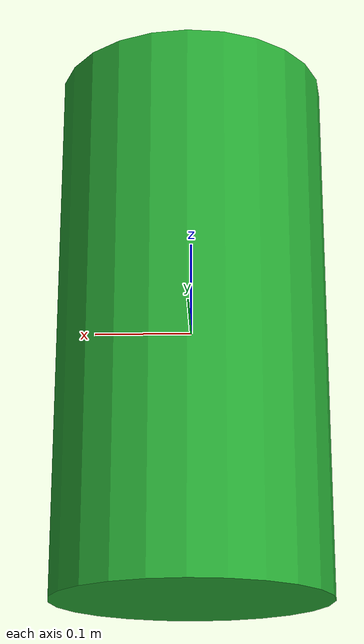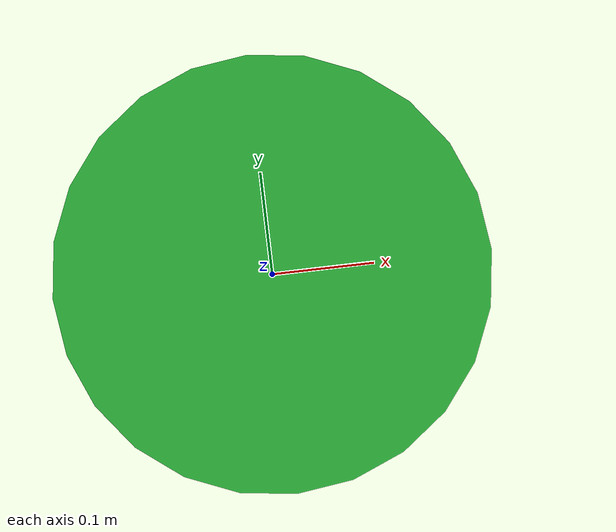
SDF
<?xml version="1.0" ?>
<sdf version="1.5">
  <model name="greencylinder">
    <static>true</static>
    <link name="link">
      <collision name="collision">
        <geometry>
          <cylinder>
            <radius>.14</radius>
            <length>.55</length>
          </cylinder>
        </geometry>
        <surface>
          <friction>
            <ode>
              <mu>100</mu>
              <mu2>50</mu2>
            </ode>
          </friction>
        </surface>
      </collision>
      <visual name="visual">
        <geometry>
          <cylinder>
            <radius>.14</radius>
            <length>.55</length>
          </cylinder>
        </geometry>
        <material>
          <script>
            <uri>file://media/materials/scripts/gazebo.material</uri>
            <name>Gazebo/Green</name>
          </script>
        </material>
      </visual>
    </link>
  </model>
</sdf>
